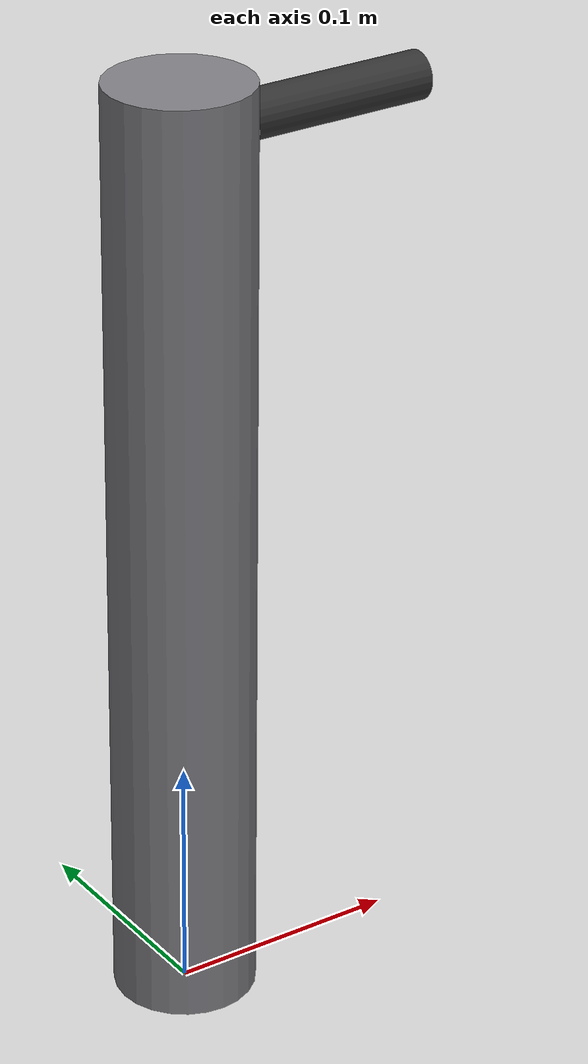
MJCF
<?xml version="1.0" encoding="utf-8"?>
<mujoco model="flare_stack_monitor">
  <compiler angle="radian" autolimits="true"/>
  <default>
    <default class="body"><geom contype="1" conaffinity="1"/></default>
  </default>
  <worldbody>
    <body name="base">
      <geom type="cylinder" size="0.03 0.20" pos="0 0 0.20" rgba="0.5 0.5 0.52 1" class="body"/>
      <body name="sensor_arm" pos="0 0 0.38">
        <joint name="sensor_arm_joint" type="hinge" axis="0 1 0" range="-0.6 0.6" damping="0.2" frictionloss="0.3"/>
  <geom type="cylinder" size="0.01 0.06" pos="0.05 0 0" rgba="0.2 0.2 0.2 1" class="body" quat="0.7071068 0 0.7071068 0"/>
      </body>
    </body>
  </worldbody>
</mujoco>
